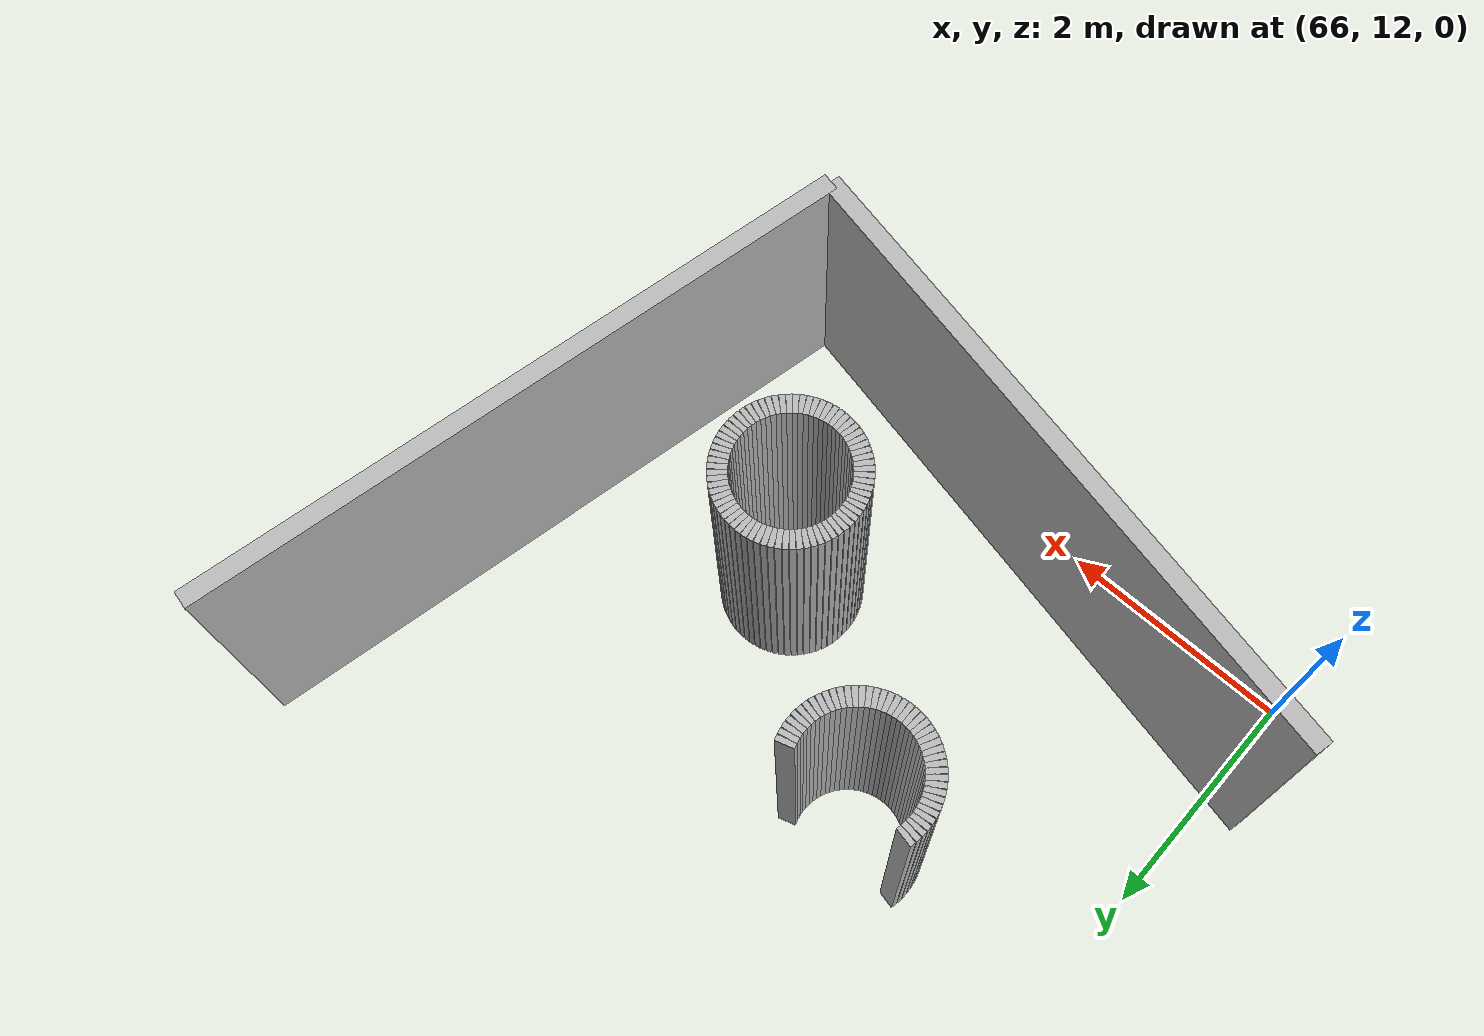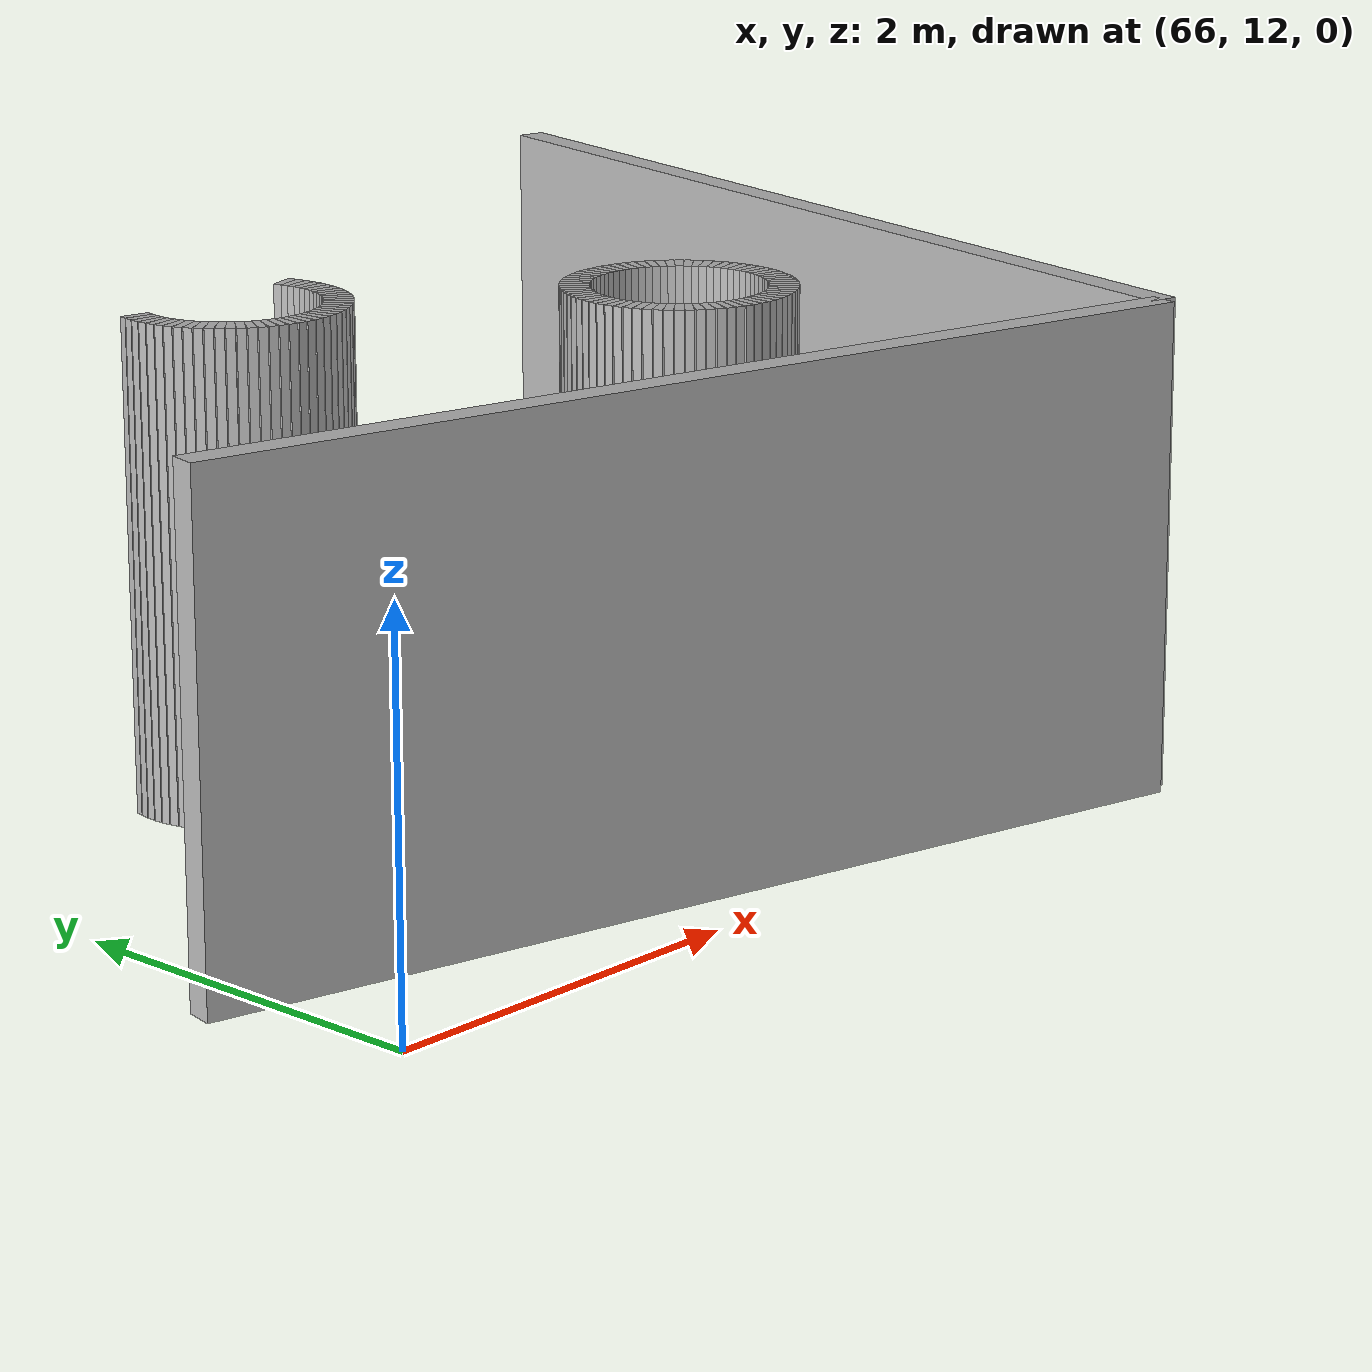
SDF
<sdf version="1.6">
 <model name="sps_1202">
  <static>1</static>
  <allow_auto_disable>0</allow_auto_disable>
  <link name="Wall1320">
   <collision name="collision"><geometry><box><size>0.0453524 0.15 2.5</size></box></geometry></collision>
   <visual name="visual">
    <geometry><box><size>0.0453524 0.15 2.5</size></box></geometry>
    <transparency>0.0</transparency>
   </visual>
   <pose>69.9755 14.1679 1.25 0 0 -0.655614</pose>
  </link>
  <link name="Wall1321">
   <collision name="collision"><geometry><box><size>0.0453186 0.15 2.5</size></box></geometry></collision>
   <visual name="visual">
    <geometry><box><size>0.0453186 0.15 2.5</size></box></geometry>
    <transparency>0.0</transparency>
   </visual>
   <pose>70.0102 14.1388 1.25 0 0 -0.740624</pose>
  </link>
  <link name="Wall1322">
   <collision name="collision"><geometry><box><size>0.0454087 0.15 2.5</size></box></geometry></collision>
   <visual name="visual">
    <geometry><box><size>0.0454087 0.15 2.5</size></box></geometry>
    <transparency>0.0</transparency>
   </visual>
   <pose>70.0422 14.1067 1.25 0 0 -0.831987</pose>
  </link>
  <link name="Wall1323">
   <collision name="collision"><geometry><box><size>0.0453637 0.15 2.5</size></box></geometry></collision>
   <visual name="visual">
    <geometry><box><size>0.0453637 0.15 2.5</size></box></geometry>
    <transparency>0.0</transparency>
   </visual>
   <pose>70.0713 14.0719 1.25 0 0 -0.91707</pose>
  </link>
  <link name="Wall1324">
   <collision name="collision"><geometry><box><size>0.045342 0.15 2.5</size></box></geometry></collision>
   <visual name="visual">
    <geometry><box><size>0.045342 0.15 2.5</size></box></geometry>
    <transparency>0.0</transparency>
   </visual>
   <pose>70.0973 14.0348 1.25 0 0 -1.00221</pose>
  </link>
  <link name="Wall1325">
   <collision name="collision"><geometry><box><size>0.0453724 0.15 2.5</size></box></geometry></collision>
   <visual name="visual">
    <geometry><box><size>0.0453724 0.15 2.5</size></box></geometry>
    <transparency>0.0</transparency>
   </visual>
   <pose>70.12 13.9956 1.25 0 0 -1.0897</pose>
  </link>
  <link name="Wall1326">
   <collision name="collision"><geometry><box><size>0.0453827 0.15 2.5</size></box></geometry></collision>
   <visual name="visual">
    <geometry><box><size>0.0453827 0.15 2.5</size></box></geometry>
    <transparency>0.0</transparency>
   </visual>
   <pose>70.1391 13.9545 1.25 0 0 -1.1818</pose>
  </link>
  <link name="Wall1327">
   <collision name="collision"><geometry><box><size>0.0453611 0.15 2.5</size></box></geometry></collision>
   <visual name="visual">
    <geometry><box><size>0.0453611 0.15 2.5</size></box></geometry>
    <transparency>0.0</transparency>
   </visual>
   <pose>70.1546 13.9119 1.25 0 0 -1.26181</pose>
  </link>
  <link name="Wall1328">
   <collision name="collision"><geometry><box><size>0.0453955 0.15 2.5</size></box></geometry></collision>
   <visual name="visual">
    <geometry><box><size>0.0453955 0.15 2.5</size></box></geometry>
    <transparency>0.0</transparency>
   </visual>
   <pose>70.1663 13.8681 1.25 0 0 -1.35811</pose>
  </link>
  <link name="Wall1329">
   <collision name="collision"><geometry><box><size>0.0453869 0.15 2.5</size></box></geometry></collision>
   <visual name="visual">
    <geometry><box><size>0.0453869 0.15 2.5</size></box></geometry>
    <transparency>0.0</transparency>
   </visual>
   <pose>70.1741 13.8234 1.25 0 0 -1.43727</pose>
  </link>
  <link name="Wall1330">
   <collision name="collision"><geometry><box><size>0.0452692 0.15 2.5</size></box></geometry></collision>
   <visual name="visual">
    <geometry><box><size>0.0452692 0.15 2.5</size></box></geometry>
    <transparency>0.0</transparency>
   </visual>
   <pose>70.1781 13.7783 1.25 0 0 -1.52764</pose>
  </link>
  <link name="Wall1331">
   <collision name="collision"><geometry><box><size>0.0454521 0.15 2.5</size></box></geometry></collision>
   <visual name="visual">
    <geometry><box><size>0.0454521 0.15 2.5</size></box></geometry>
    <transparency>0.0</transparency>
   </visual>
   <pose>70.1781 13.733 1.25 0 0 -1.61378</pose>
  </link>
  <link name="Wall1332">
   <collision name="collision"><geometry><box><size>0.0452055 0.15 2.5</size></box></geometry></collision>
   <visual name="visual">
    <geometry><box><size>0.0452055 0.15 2.5</size></box></geometry>
    <transparency>0.0</transparency>
   </visual>
   <pose>70.1741 13.6879 1.25 0 0 -1.70486</pose>
  </link>
  <link name="Wall1333">
   <collision name="collision"><geometry><box><size>0.0454345 0.15 2.5</size></box></geometry></collision>
   <visual name="visual">
    <geometry><box><size>0.0454345 0.15 2.5</size></box></geometry>
    <transparency>0.0</transparency>
   </visual>
   <pose>70.1662 13.6433 1.25 0 0 -1.78743</pose>
  </link>
  <link name="Wall1334">
   <collision name="collision"><geometry><box><size>0.0453057 0.15 2.5</size></box></geometry></collision>
   <visual name="visual">
    <geometry><box><size>0.0453057 0.15 2.5</size></box></geometry>
    <transparency>0.0</transparency>
   </visual>
   <pose>70.1545 13.5995 1.25 0 0 -1.87593</pose>
  </link>
  <link name="Wall1335">
   <collision name="collision"><geometry><box><size>0.0454525 0.15 2.5</size></box></geometry></collision>
   <visual name="visual">
    <geometry><box><size>0.0454525 0.15 2.5</size></box></geometry>
    <transparency>0.0</transparency>
   </visual>
   <pose>70.139 13.5569 1.25 0 0 -1.96352</pose>
  </link>
  <link name="Wall1336">
   <collision name="collision"><geometry><box><size>0.0453724 0.15 2.5</size></box></geometry></collision>
   <visual name="visual">
    <geometry><box><size>0.0453724 0.15 2.5</size></box></geometry>
    <transparency>0.0</transparency>
   </visual>
   <pose>70.1198 13.5158 1.25 0 0 -2.05189</pose>
  </link>
  <link name="Wall1337">
   <collision name="collision"><geometry><box><size>0.045342 0.15 2.5</size></box></geometry></collision>
   <visual name="visual">
    <geometry><box><size>0.045342 0.15 2.5</size></box></geometry>
    <transparency>0.0</transparency>
   </visual>
   <pose>70.0971 13.4766 1.25 0 0 -2.13938</pose>
  </link>
  <link name="Wall1338">
   <collision name="collision"><geometry><box><size>0.0453153 0.15 2.5</size></box></geometry></collision>
   <visual name="visual">
    <geometry><box><size>0.0453153 0.15 2.5</size></box></geometry>
    <transparency>0.0</transparency>
   </visual>
   <pose>70.0711 13.4395 1.25 0 0 -2.22534</pose>
  </link>
  <link name="Wall1339">
   <collision name="collision"><geometry><box><size>0.0453598 0.15 2.5</size></box></geometry></collision>
   <visual name="visual">
    <geometry><box><size>0.0453598 0.15 2.5</size></box></geometry>
    <transparency>0.0</transparency>
   </visual>
   <pose>70.042 13.4048 1.25 0 0 -2.31241</pose>
  </link>
  <link name="Wall1340">
   <collision name="collision"><geometry><box><size>0.0453974 0.15 2.5</size></box></geometry></collision>
   <visual name="visual">
    <geometry><box><size>0.0453974 0.15 2.5</size></box></geometry>
    <transparency>0.0</transparency>
   </visual>
   <pose>70.0099 13.3727 1.25 0 0 -2.39709</pose>
  </link>
  <link name="Wall1341">
   <collision name="collision"><geometry><box><size>0.0454008 0.15 2.5</size></box></geometry></collision>
   <visual name="visual">
    <geometry><box><size>0.0454008 0.15 2.5</size></box></geometry>
    <transparency>0.0</transparency>
   </visual>
   <pose>69.9752 13.3435 1.25 0 0 -2.4868</pose>
  </link>
  <link name="Wall1342">
   <collision name="collision"><geometry><box><size>0.0453659 0.15 2.5</size></box></geometry></collision>
   <visual name="visual">
    <geometry><box><size>0.0453659 0.15 2.5</size></box></geometry>
    <transparency>0.0</transparency>
   </visual>
   <pose>69.938 13.3176 1.25 0 0 -2.57971</pose>
  </link>
  <link name="Wall1343">
   <collision name="collision"><geometry><box><size>0.0453183 0.15 2.5</size></box></geometry></collision>
   <visual name="visual">
    <geometry><box><size>0.0453183 0.15 2.5</size></box></geometry>
    <transparency>0.0</transparency>
   </visual>
   <pose>69.8988 13.295 1.25 0 0 -2.65987</pose>
  </link>
  <link name="Wall1344">
   <collision name="collision"><geometry><box><size>0.0455089 0.15 2.5</size></box></geometry></collision>
   <visual name="visual">
    <geometry><box><size>0.0455089 0.15 2.5</size></box></geometry>
    <transparency>0.0</transparency>
   </visual>
   <pose>69.8577 13.2758 1.25 0 0 -2.74938</pose>
  </link>
  <link name="Wall1345">
   <collision name="collision"><geometry><box><size>0.0452475 0.15 2.5</size></box></geometry></collision>
   <visual name="visual">
    <geometry><box><size>0.0452475 0.15 2.5</size></box></geometry>
    <transparency>0.0</transparency>
   </visual>
   <pose>69.8151 13.2603 1.25 0 0 -2.83605</pose>
  </link>
  <link name="Wall1346">
   <collision name="collision"><geometry><box><size>0.0453285 0.15 2.5</size></box></geometry></collision>
   <visual name="visual">
    <geometry><box><size>0.0453285 0.15 2.5</size></box></geometry>
    <transparency>0.0</transparency>
   </visual>
   <pose>69.7714 13.2486 1.25 0 0 -2.92307</pose>
  </link>
  <link name="Wall1347">
   <collision name="collision"><geometry><box><size>0.0453551 0.15 2.5</size></box></geometry></collision>
   <visual name="visual">
    <geometry><box><size>0.0453551 0.15 2.5</size></box></geometry>
    <transparency>0.0</transparency>
   </visual>
   <pose>69.7267 13.2408 1.25 0 0 -3.0134</pose>
  </link>
  <link name="Wall1348">
   <collision name="collision"><geometry><box><size>0.0454521 0.15 2.5</size></box></geometry></collision>
   <visual name="visual">
    <geometry><box><size>0.0454521 0.15 2.5</size></box></geometry>
    <transparency>0.0</transparency>
   </visual>
   <pose>69.6815 13.2369 1.25 0 0 -3.09861</pose>
  </link>
  <link name="Wall1349">
   <collision name="collision"><geometry><box><size>0.0452082 0.15 2.5</size></box></geometry></collision>
   <visual name="visual">
    <geometry><box><size>0.0452082 0.15 2.5</size></box></geometry>
    <transparency>0.0</transparency>
   </visual>
   <pose>69.6363 13.2369 1.25 0 -0 3.09838</pose>
  </link>
  <link name="Wall1350">
   <collision name="collision"><geometry><box><size>0.0454156 0.15 2.5</size></box></geometry></collision>
   <visual name="visual">
    <geometry><box><size>0.0454156 0.15 2.5</size></box></geometry>
    <transparency>0.0</transparency>
   </visual>
   <pose>69.5911 13.2408 1.25 0 -0 3.01357</pose>
  </link>
  <link name="Wall1351">
   <collision name="collision"><geometry><box><size>0.0454476 0.15 2.5</size></box></geometry></collision>
   <visual name="visual">
    <geometry><box><size>0.0454476 0.15 2.5</size></box></geometry>
    <transparency>0.0</transparency>
   </visual>
   <pose>69.5464 13.2486 1.25 0 -0 2.92365</pose>
  </link>
  <link name="Wall1352">
   <collision name="collision"><geometry><box><size>0.0453611 0.15 2.5</size></box></geometry></collision>
   <visual name="visual">
    <geometry><box><size>0.0453611 0.15 2.5</size></box></geometry>
    <transparency>0.0</transparency>
   </visual>
   <pose>69.5026 13.2604 1.25 0 -0 2.83261</pose>
  </link>
  <link name="Wall1353">
   <collision name="collision"><geometry><box><size>0.0452834 0.15 2.5</size></box></geometry></collision>
   <visual name="visual">
    <geometry><box><size>0.0452834 0.15 2.5</size></box></geometry>
    <transparency>0.0</transparency>
   </visual>
   <pose>69.4601 13.276 1.25 0 -0 2.74732</pose>
  </link>
  <link name="Wall1354">
   <collision name="collision"><geometry><box><size>0.0454507 0.15 2.5</size></box></geometry></collision>
   <visual name="visual">
    <geometry><box><size>0.0454507 0.15 2.5</size></box></geometry>
    <transparency>0.0</transparency>
   </visual>
   <pose>69.419 13.2951 1.25 0 -0 2.66593</pose>
  </link>
  <link name="Wall1355">
   <collision name="collision"><geometry><box><size>0.0452906 0.15 2.5</size></box></geometry></collision>
   <visual name="visual">
    <geometry><box><size>0.0452906 0.15 2.5</size></box></geometry>
    <transparency>0.0</transparency>
   </visual>
   <pose>69.3798 13.3177 1.25 0 -0 2.57228</pose>
  </link>
  <link name="Wall1356">
   <collision name="collision"><geometry><box><size>0.0453637 0.15 2.5</size></box></geometry></collision>
   <visual name="visual">
    <geometry><box><size>0.0453637 0.15 2.5</size></box></geometry>
    <transparency>0.0</transparency>
   </visual>
   <pose>69.3427 13.3437 1.25 0 -0 2.48787</pose>
  </link>
  <link name="Wall1357">
   <collision name="collision"><geometry><box><size>0.0454388 0.15 2.5</size></box></geometry></collision>
   <visual name="visual">
    <geometry><box><size>0.0454388 0.15 2.5</size></box></geometry>
    <transparency>0.0</transparency>
   </visual>
   <pose>69.308 13.3729 1.25 0 -0 2.3961</pose>
  </link>
  <link name="Wall1358">
   <collision name="collision"><geometry><box><size>0.0453148 0.15 2.5</size></box></geometry></collision>
   <visual name="visual">
    <geometry><box><size>0.0453148 0.15 2.5</size></box></geometry>
    <transparency>0.0</transparency>
   </visual>
   <pose>69.276 13.405 1.25 0 -0 2.31332</pose>
  </link>
  <link name="Wall1359">
   <collision name="collision"><geometry><box><size>0.0453637 0.15 2.5</size></box></geometry></collision>
   <visual name="visual">
    <geometry><box><size>0.0453637 0.15 2.5</size></box></geometry>
    <transparency>0.0</transparency>
   </visual>
   <pose>69.2468 13.4397 1.25 0 -0 2.22452</pose>
  </link>
  <link name="Wall1360">
   <collision name="collision"><geometry><box><size>0.0452906 0.15 2.5</size></box></geometry></collision>
   <visual name="visual">
    <geometry><box><size>0.0452906 0.15 2.5</size></box></geometry>
    <transparency>0.0</transparency>
   </visual>
   <pose>69.2208 13.4768 1.25 0 -0 2.14011</pose>
  </link>
  <link name="Wall1361">
   <collision name="collision"><geometry><box><size>0.0455348 0.15 2.5</size></box></geometry></collision>
   <visual name="visual">
    <geometry><box><size>0.0455348 0.15 2.5</size></box></geometry>
    <transparency>0.0</transparency>
   </visual>
   <pose>69.1981 13.5161 1.25 0 -0 2.05003</pose>
  </link>
  <link name="Wall1362">
   <collision name="collision"><geometry><box><size>0.0452134 0.15 2.5</size></box></geometry></collision>
   <visual name="visual">
    <geometry><box><size>0.0452134 0.15 2.5</size></box></geometry>
    <transparency>0.0</transparency>
   </visual>
   <pose>69.179 13.5572 1.25 0 -0 1.96133</pose>
  </link>
  <link name="Wall1363">
   <collision name="collision"><geometry><box><size>0.0455355 0.15 2.5</size></box></geometry></collision>
   <visual name="visual">
    <geometry><box><size>0.0455355 0.15 2.5</size></box></geometry>
    <transparency>0.0</transparency>
   </visual>
   <pose>69.1635 13.5998 1.25 0 -0 1.87856</pose>
  </link>
  <link name="Wall1364">
   <collision name="collision"><geometry><box><size>0.0452557 0.15 2.5</size></box></geometry></collision>
   <visual name="visual">
    <geometry><box><size>0.0452557 0.15 2.5</size></box></geometry>
    <transparency>0.0</transparency>
   </visual>
   <pose>69.1518 13.6436 1.25 0 -0 1.78829</pose>
  </link>
  <link name="Wall1365">
   <collision name="collision"><geometry><box><size>0.0454156 0.15 2.5</size></box></geometry></collision>
   <visual name="visual">
    <geometry><box><size>0.0454156 0.15 2.5</size></box></geometry>
    <transparency>0.0</transparency>
   </visual>
   <pose>69.144 13.6882 1.25 0 -0 1.69882</pose>
  </link>
  <link name="Wall1366">
   <collision name="collision"><geometry><box><size>0.0452109 0.15 2.5</size></box></geometry></collision>
   <visual name="visual">
    <geometry><box><size>0.0452109 0.15 2.5</size></box></geometry>
    <transparency>0.0</transparency>
   </visual>
   <pose>69.1401 13.7333 1.25 0 -0 1.61536</pose>
  </link>
  <link name="Wall1367">
   <collision name="collision"><geometry><box><size>0.0454548 0.15 2.5</size></box></geometry></collision>
   <visual name="visual">
    <geometry><box><size>0.0454548 0.15 2.5</size></box></geometry>
    <transparency>0.0</transparency>
   </visual>
   <pose>69.1401 13.7786 1.25 0 -0 1.52647</pose>
  </link>
  <link name="Wall1368">
   <collision name="collision"><geometry><box><size>0.0453788 0.15 2.5</size></box></geometry></collision>
   <visual name="visual">
    <geometry><box><size>0.0453788 0.15 2.5</size></box></geometry>
    <transparency>0.0</transparency>
   </visual>
   <pose>69.1441 13.8238 1.25 0 -0 1.4386</pose>
  </link>
  <link name="Wall1369">
   <collision name="collision"><geometry><box><size>0.0453285 0.15 2.5</size></box></geometry></collision>
   <visual name="visual">
    <geometry><box><size>0.0453285 0.15 2.5</size></box></geometry>
    <transparency>0.0</transparency>
   </visual>
   <pose>69.152 13.8684 1.25 0 -0 1.35227</pose>
  </link>
  <link name="Wall1370">
   <collision name="collision"><geometry><box><size>0.0454622 0.15 2.5</size></box></geometry></collision>
   <visual name="visual">
    <geometry><box><size>0.0454622 0.15 2.5</size></box></geometry>
    <transparency>0.0</transparency>
   </visual>
   <pose>69.1637 13.9122 1.25 0 -0 1.26815</pose>
  </link>
  <link name="Wall1371">
   <collision name="collision"><geometry><box><size>0.0452834 0.15 2.5</size></box></geometry></collision>
   <visual name="visual">
    <geometry><box><size>0.0452834 0.15 2.5</size></box></geometry>
    <transparency>0.0</transparency>
   </visual>
   <pose>69.1791 13.9548 1.25 0 -0 1.17652</pose>
  </link>
  <link name="Wall1372">
   <collision name="collision"><geometry><box><size>0.0452338 0.15 2.5</size></box></geometry></collision>
   <visual name="visual">
    <geometry><box><size>0.0452338 0.15 2.5</size></box></geometry>
    <transparency>0.0</transparency>
   </visual>
   <pose>69.1982 13.9958 1.25 0 -0 1.09267</pose>
  </link>
  <link name="Wall1373">
   <collision name="collision"><geometry><box><size>0.0455949 0.15 2.5</size></box></geometry></collision>
   <visual name="visual">
    <geometry><box><size>0.0455949 0.15 2.5</size></box></geometry>
    <transparency>0.0</transparency>
   </visual>
   <pose>69.2209 14.0351 1.25 0 -0 1.00099</pose>
  </link>
  <link name="Wall1374">
   <collision name="collision"><geometry><box><size>0.0453637 0.15 2.5</size></box></geometry></collision>
   <visual name="visual">
    <geometry><box><size>0.0453637 0.15 2.5</size></box></geometry>
    <transparency>0.0</transparency>
   </visual>
   <pose>69.247 14.0723 1.25 0 -0 0.91707</pose>
  </link>
  <link name="Wall1375">
   <collision name="collision"><geometry><box><size>0.0453148 0.15 2.5</size></box></geometry></collision>
   <visual name="visual">
    <geometry><box><size>0.0453148 0.15 2.5</size></box></geometry>
    <transparency>0.0</transparency>
   </visual>
   <pose>69.2761 14.107 1.25 0 -0 0.82827</pose>
  </link>
  <link name="Wall1376">
   <collision name="collision"><geometry><box><size>0.0453148 0.15 2.5</size></box></geometry></collision>
   <visual name="visual">
    <geometry><box><size>0.0453148 0.15 2.5</size></box></geometry>
    <transparency>0.0</transparency>
   </visual>
   <pose>69.3082 14.139 1.25 0 -0 0.742526</pose>
  </link>
  <link name="Wall1377">
   <collision name="collision"><geometry><box><size>0.0453637 0.15 2.5</size></box></geometry></collision>
   <visual name="visual">
    <geometry><box><size>0.0453637 0.15 2.5</size></box></geometry>
    <transparency>0.0</transparency>
   </visual>
   <pose>69.3429 14.1681 1.25 0 -0 0.653727</pose>
  </link>
  <link name="Wall1378">
   <collision name="collision"><geometry><box><size>0.0454964 0.15 2.5</size></box></geometry></collision>
   <visual name="visual">
    <geometry><box><size>0.0454964 0.15 2.5</size></box></geometry>
    <transparency>0.0</transparency>
   </visual>
   <pose>69.3801 14.1941 1.25 0 -0 0.566421</pose>
  </link>
  <link name="Wall1379">
   <collision name="collision"><geometry><box><size>0.04526 0.15 2.5</size></box></geometry></collision>
   <visual name="visual">
    <geometry><box><size>0.04526 0.15 2.5</size></box></geometry>
    <transparency>0.0</transparency>
   </visual>
   <pose>69.4194 14.2167 1.25 0 -0 0.476313</pose>
  </link>
  <link name="Wall1380">
   <collision name="collision"><geometry><box><size>0.0453069 0.15 2.5</size></box></geometry></collision>
   <visual name="visual">
    <geometry><box><size>0.0453069 0.15 2.5</size></box></geometry>
    <transparency>0.0</transparency>
   </visual>
   <pose>69.4604 14.2358 1.25 0 -0 0.395517</pose>
  </link>
  <link name="Wall1381">
   <collision name="collision"><geometry><box><size>0.0454622 0.15 2.5</size></box></geometry></collision>
   <visual name="visual">
    <geometry><box><size>0.0454622 0.15 2.5</size></box></geometry>
    <transparency>0.0</transparency>
   </visual>
   <pose>69.503 14.2513 1.25 0 -0 0.302645</pose>
  </link>
  <link name="Wall1382">
   <collision name="collision"><geometry><box><size>0.0452689 0.15 2.5</size></box></geometry></collision>
   <visual name="visual">
    <geometry><box><size>0.0452689 0.15 2.5</size></box></geometry>
    <transparency>0.0</transparency>
   </visual>
   <pose>69.5468 14.263 1.25 0 -0 0.218815</pose>
  </link>
  <link name="Wall1383">
   <collision name="collision"><geometry><box><size>0.0453788 0.15 2.5</size></box></geometry></collision>
   <visual name="visual">
    <geometry><box><size>0.0453788 0.15 2.5</size></box></geometry>
    <transparency>0.0</transparency>
   </visual>
   <pose>69.5914 14.2709 1.25 0 -0 0.132196</pose>
  </link>
  <link name="Wall1384">
   <collision name="collision"><geometry><box><size>0.0454548 0.15 2.5</size></box></geometry></collision>
   <visual name="visual">
    <geometry><box><size>0.0454548 0.15 2.5</size></box></geometry>
    <transparency>0.0</transparency>
   </visual>
   <pose>69.6366 14.2749 1.25 0 -0 0.0443258</pose>
  </link>
  <link name="Wall1385">
   <collision name="collision"><geometry><box><size>0.0452109 0.15 2.5</size></box></geometry></collision>
   <visual name="visual">
    <geometry><box><size>0.0452109 0.15 2.5</size></box></geometry>
    <transparency>0.0</transparency>
   </visual>
   <pose>69.6818 14.2749 1.25 0 0 -0.0445651</pose>
  </link>
  <link name="Wall1386">
   <collision name="collision"><geometry><box><size>0.0454394 0.15 2.5</size></box></geometry></collision>
   <visual name="visual">
    <geometry><box><size>0.0454394 0.15 2.5</size></box></geometry>
    <transparency>0.0</transparency>
   </visual>
   <pose>69.727 14.2709 1.25 0 0 -0.132019</pose>
  </link>
  <link name="Wall1387">
   <collision name="collision"><geometry><box><size>0.0454476 0.15 2.5</size></box></geometry></collision>
   <visual name="visual">
    <geometry><box><size>0.0454476 0.15 2.5</size></box></geometry>
    <transparency>0.0</transparency>
   </visual>
   <pose>69.7717 14.263 1.25 0 0 -0.217941</pose>
  </link>
  <link name="Wall1388">
   <collision name="collision"><geometry><box><size>0.0452874 0.15 2.5</size></box></geometry></collision>
   <visual name="visual">
    <geometry><box><size>0.0452874 0.15 2.5</size></box></geometry>
    <transparency>0.0</transparency>
   </visual>
   <pose>69.8155 14.2513 1.25 0 0 -0.30385</pose>
  </link>
  <link name="Wall1389">
   <collision name="collision"><geometry><box><size>0.0453069 0.15 2.5</size></box></geometry></collision>
   <visual name="visual">
    <geometry><box><size>0.0453069 0.15 2.5</size></box></geometry>
    <transparency>0.0</transparency>
   </visual>
   <pose>69.858 14.2358 1.25 0 0 -0.395517</pose>
  </link>
  <link name="Wall1390">
   <collision name="collision"><geometry><box><size>0.0455348 0.15 2.5</size></box></geometry></collision>
   <visual name="visual">
    <geometry><box><size>0.0455348 0.15 2.5</size></box></geometry>
    <transparency>0.0</transparency>
   </visual>
   <pose>69.8991 14.2166 1.25 0 0 -0.479234</pose>
  </link>
  <link name="Wall1391">
   <collision name="collision"><geometry><box><size>0.0453092 0.15 2.5</size></box></geometry></collision>
   <visual name="visual">
    <geometry><box><size>0.0453092 0.15 2.5</size></box></geometry>
    <transparency>0.0</transparency>
   </visual>
   <pose>69.9384 14.1939 1.25 0 0 -0.567452</pose>
  </link>
  <link name="Wall2151">
   <collision name="collision"><geometry><box><size>0.0454804 0.15 2.5</size></box></geometry></collision>
   <visual name="visual">
    <geometry><box><size>0.0454804 0.15 2.5</size></box></geometry>
    <transparency>0.0</transparency>
   </visual>
   <pose>68.3979 15.246 1.25 0 0 -1.26687</pose>
  </link>
  <link name="Wall2152">
   <collision name="collision"><geometry><box><size>0.0453153 0.15 2.5</size></box></geometry></collision>
   <visual name="visual">
    <geometry><box><size>0.0453153 0.15 2.5</size></box></geometry>
    <transparency>0.0</transparency>
   </visual>
   <pose>68.4096 15.2022 1.25 0 0 -1.35359</pose>
  </link>
  <link name="Wall2153">
   <collision name="collision"><geometry><box><size>0.0453788 0.15 2.5</size></box></geometry></collision>
   <visual name="visual">
    <geometry><box><size>0.0453788 0.15 2.5</size></box></geometry>
    <transparency>0.0</transparency>
   </visual>
   <pose>68.4174 15.1576 1.25 0 0 -1.4386</pose>
  </link>
  <link name="Wall2154">
   <collision name="collision"><geometry><box><size>0.0454548 0.15 2.5</size></box></geometry></collision>
   <visual name="visual">
    <geometry><box><size>0.0454548 0.15 2.5</size></box></geometry>
    <transparency>0.0</transparency>
   </visual>
   <pose>68.4214 15.1124 1.25 0 0 -1.52647</pose>
  </link>
  <link name="Wall2155">
   <collision name="collision"><geometry><box><size>0.0452109 0.15 2.5</size></box></geometry></collision>
   <visual name="visual">
    <geometry><box><size>0.0452109 0.15 2.5</size></box></geometry>
    <transparency>0.0</transparency>
   </visual>
   <pose>68.4214 15.0671 1.25 0 0 -1.61536</pose>
  </link>
  <link name="Wall2156">
   <collision name="collision"><geometry><box><size>0.0454394 0.15 2.5</size></box></geometry></collision>
   <visual name="visual">
    <geometry><box><size>0.0454394 0.15 2.5</size></box></geometry>
    <transparency>0.0</transparency>
   </visual>
   <pose>68.4174 15.022 1.25 0 0 -1.70282</pose>
  </link>
  <link name="Wall2157">
   <collision name="collision"><geometry><box><size>0.0452557 0.15 2.5</size></box></geometry></collision>
   <visual name="visual">
    <geometry><box><size>0.0452557 0.15 2.5</size></box></geometry>
    <transparency>0.0</transparency>
   </visual>
   <pose>68.4096 14.9774 1.25 0 0 -1.78829</pose>
  </link>
  <link name="Wall2158">
   <collision name="collision"><geometry><box><size>0.0455541 0.15 2.5</size></box></geometry></collision>
   <visual name="visual">
    <geometry><box><size>0.0455541 0.15 2.5</size></box></geometry>
    <transparency>0.0</transparency>
   </visual>
   <pose>68.3978 14.9336 1.25 0 0 -1.87984</pose>
  </link>
  <link name="Wall2159">
   <collision name="collision"><geometry><box><size>0.0452834 0.15 2.5</size></box></geometry></collision>
   <visual name="visual">
    <geometry><box><size>0.0452834 0.15 2.5</size></box></geometry>
    <transparency>0.0</transparency>
   </visual>
   <pose>68.3821 14.891 1.25 0 0 -1.96507</pose>
  </link>
  <link name="Wall2160">
   <collision name="collision"><geometry><box><size>0.0454228 0.15 2.5</size></box></geometry></collision>
   <visual name="visual">
    <geometry><box><size>0.0454228 0.15 2.5</size></box></geometry>
    <transparency>0.0</transparency>
   </visual>
   <pose>68.3631 14.8499 1.25 0 0 -2.04526</pose>
  </link>
  <link name="Wall2161">
   <collision name="collision"><geometry><box><size>0.0452906 0.15 2.5</size></box></geometry></collision>
   <visual name="visual">
    <geometry><box><size>0.0452906 0.15 2.5</size></box></geometry>
    <transparency>0.0</transparency>
   </visual>
   <pose>68.3405 14.8106 1.25 0 0 -2.14011</pose>
  </link>
  <link name="Wall2162">
   <collision name="collision"><geometry><box><size>0.0453637 0.15 2.5</size></box></geometry></collision>
   <visual name="visual">
    <geometry><box><size>0.0453637 0.15 2.5</size></box></geometry>
    <transparency>0.0</transparency>
   </visual>
   <pose>68.3145 14.7735 1.25 0 0 -2.22452</pose>
  </link>
  <link name="Wall2163">
   <collision name="collision"><geometry><box><size>0.0454388 0.15 2.5</size></box></geometry></collision>
   <visual name="visual">
    <geometry><box><size>0.0454388 0.15 2.5</size></box></geometry>
    <transparency>0.0</transparency>
   </visual>
   <pose>68.2853 14.7388 1.25 0 0 -2.31629</pose>
  </link>
  <link name="Wall2164">
   <collision name="collision"><geometry><box><size>0.0453148 0.15 2.5</size></box></geometry></collision>
   <visual name="visual">
    <geometry><box><size>0.0453148 0.15 2.5</size></box></geometry>
    <transparency>0.0</transparency>
   </visual>
   <pose>68.2532 14.7068 1.25 0 0 -2.39907</pose>
  </link>
  <link name="Wall2165">
   <collision name="collision"><geometry><box><size>0.0453637 0.15 2.5</size></box></geometry></collision>
   <visual name="visual">
    <geometry><box><size>0.0453637 0.15 2.5</size></box></geometry>
    <transparency>0.0</transparency>
   </visual>
   <pose>68.2185 14.6777 1.25 0 0 -2.48787</pose>
  </link>
  <link name="Wall2166">
   <collision name="collision"><geometry><box><size>0.045342 0.15 2.5</size></box></geometry></collision>
   <visual name="visual">
    <geometry><box><size>0.045342 0.15 2.5</size></box></geometry>
    <transparency>0.0</transparency>
   </visual>
   <pose>68.1814 14.6517 1.25 0 0 -2.57301</pose>
  </link>
  <link name="Wall2167">
   <collision name="collision"><geometry><box><size>0.045288 0.15 2.5</size></box></geometry></collision>
   <visual name="visual">
    <geometry><box><size>0.045288 0.15 2.5</size></box></geometry>
    <transparency>0.0</transparency>
   </visual>
   <pose>68.1421 14.6291 1.25 0 0 -2.66408</pose>
  </link>
  <link name="Wall2168">
   <collision name="collision"><geometry><box><size>0.0454525 0.15 2.5</size></box></geometry></collision>
   <visual name="visual">
    <geometry><box><size>0.0454525 0.15 2.5</size></box></geometry>
    <transparency>0.0</transparency>
   </visual>
   <pose>68.101 14.61 1.25 0 0 -2.74887</pose>
  </link>
  <link name="Wall2169">
   <collision name="collision"><geometry><box><size>0.0455355 0.15 2.5</size></box></geometry></collision>
   <visual name="visual">
    <geometry><box><size>0.0455355 0.15 2.5</size></box></geometry>
    <transparency>0.0</transparency>
   </visual>
   <pose>68.0583 14.5944 1.25 0 0 -2.83383</pose>
  </link>
  <link name="Wall2170">
   <collision name="collision"><geometry><box><size>0.0452557 0.15 2.5</size></box></geometry></collision>
   <visual name="visual">
    <geometry><box><size>0.0452557 0.15 2.5</size></box></geometry>
    <transparency>0.0</transparency>
   </visual>
   <pose>68.0145 14.5826 1.25 0 0 -2.92409</pose>
  </link>
  <link name="Wall2171">
   <collision name="collision"><geometry><box><size>0.0453551 0.15 2.5</size></box></geometry></collision>
   <visual name="visual">
    <geometry><box><size>0.0453551 0.15 2.5</size></box></geometry>
    <transparency>0.0</transparency>
   </visual>
   <pose>67.97 14.5748 1.25 0 0 -3.0134</pose>
  </link>
  <link name="Wall2172">
   <collision name="collision"><geometry><box><size>0.0452719 0.15 2.5</size></box></geometry></collision>
   <visual name="visual">
    <geometry><box><size>0.0452719 0.15 2.5</size></box></geometry>
    <transparency>0.0</transparency>
   </visual>
   <pose>67.9249 14.5709 1.25 0 0 -3.09709</pose>
  </link>
  <link name="Wall2173">
   <collision name="collision"><geometry><box><size>0.0454548 0.15 2.5</size></box></geometry></collision>
   <visual name="visual">
    <geometry><box><size>0.0454548 0.15 2.5</size></box></geometry>
    <transparency>0.0</transparency>
   </visual>
   <pose>67.8795 14.5709 1.25 0 -0 3.09727</pose>
  </link>
  <link name="Wall2174">
   <collision name="collision"><geometry><box><size>0.0453788 0.15 2.5</size></box></geometry></collision>
   <visual name="visual">
    <geometry><box><size>0.0453788 0.15 2.5</size></box></geometry>
    <transparency>0.0</transparency>
   </visual>
   <pose>67.8343 14.5749 1.25 0 -0 3.0094</pose>
  </link>
  <link name="Wall2175">
   <collision name="collision"><geometry><box><size>0.0452689 0.15 2.5</size></box></geometry></collision>
   <visual name="visual">
    <geometry><box><size>0.0452689 0.15 2.5</size></box></geometry>
    <transparency>0.0</transparency>
   </visual>
   <pose>67.7898 14.5828 1.25 0 -0 2.92278</pose>
  </link>
  <link name="Wall2176">
   <collision name="collision"><geometry><box><size>0.0452874 0.15 2.5</size></box></geometry></collision>
   <visual name="visual">
    <geometry><box><size>0.0452874 0.15 2.5</size></box></geometry>
    <transparency>0.0</transparency>
   </visual>
   <pose>67.7461 14.5945 1.25 0 -0 2.83774</pose>
  </link>
  <link name="Wall2177">
   <collision name="collision"><geometry><box><size>0.0454525 0.15 2.5</size></box></geometry></collision>
   <visual name="visual">
    <geometry><box><size>0.0454525 0.15 2.5</size></box></geometry>
    <transparency>0.0</transparency>
   </visual>
   <pose>67.7035 14.61 1.25 0 -0 2.74887</pose>
  </link>
  <link name="Wall2178">
   <collision name="collision"><geometry><box><size>0.0453724 0.15 2.5</size></box></geometry></collision>
   <visual name="visual">
    <geometry><box><size>0.0453724 0.15 2.5</size></box></geometry>
    <transparency>0.0</transparency>
   </visual>
   <pose>67.6623 14.6292 1.25 0 -0 2.6605</pose>
  </link>
  <link name="Wall2179">
   <collision name="collision"><geometry><box><size>0.0454964 0.15 2.5</size></box></geometry></collision>
   <visual name="visual">
    <geometry><box><size>0.0454964 0.15 2.5</size></box></geometry>
    <transparency>0.0</transparency>
   </visual>
   <pose>67.623 14.6519 1.25 0 -0 2.57517</pose>
  </link>
  <link name="Wall2180">
   <collision name="collision"><geometry><box><size>0.0453637 0.15 2.5</size></box></geometry></collision>
   <visual name="visual">
    <geometry><box><size>0.0453637 0.15 2.5</size></box></geometry>
    <transparency>0.0</transparency>
   </visual>
   <pose>67.5858 14.6779 1.25 0 -0 2.48787</pose>
  </link>
  <link name="Wall2181">
   <collision name="collision"><geometry><box><size>0.04518 0.15 2.5</size></box></geometry></collision>
   <visual name="visual">
    <geometry><box><size>0.04518 0.15 2.5</size></box></geometry>
    <transparency>0.0</transparency>
   </visual>
   <pose>67.5512 14.707 1.25 0 -0 2.39633</pose>
  </link>
  <link name="Wall2182">
   <collision name="collision"><geometry><box><size>0.0455322 0.15 2.5</size></box></geometry></collision>
   <visual name="visual">
    <geometry><box><size>0.0455322 0.15 2.5</size></box></geometry>
    <transparency>0.0</transparency>
   </visual>
   <pose>67.5192 14.7391 1.25 0 -0 2.31258</pose>
  </link>
  <link name="Wall2183">
   <collision name="collision"><geometry><box><size>0.0452185 0.15 2.5</size></box></geometry></collision>
   <visual name="visual">
    <geometry><box><size>0.0452185 0.15 2.5</size></box></geometry>
    <transparency>0.0</transparency>
   </visual>
   <pose>67.4901 14.7738 1.25 0 -0 2.22699</pose>
  </link>
  <link name="Wall2184">
   <collision name="collision"><geometry><box><size>0.0454964 0.15 2.5</size></box></geometry></collision>
   <visual name="visual">
    <geometry><box><size>0.0454964 0.15 2.5</size></box></geometry>
    <transparency>0.0</transparency>
   </visual>
   <pose>67.4641 14.8109 1.25 0 -0 2.13722</pose>
  </link>
  <link name="Wall2185">
   <collision name="collision"><geometry><box><size>0.045288 0.15 2.5</size></box></geometry></collision>
   <visual name="visual">
    <geometry><box><size>0.045288 0.15 2.5</size></box></geometry>
    <transparency>0.0</transparency>
   </visual>
   <pose>67.4415 14.8502 1.25 0 -0 2.04831</pose>
  </link>
  <link name="Wall2186">
   <collision name="collision"><geometry><box><size>0.0454525 0.15 2.5</size></box></geometry></collision>
   <visual name="visual">
    <geometry><box><size>0.0454525 0.15 2.5</size></box></geometry>
    <transparency>0.0</transparency>
   </visual>
   <pose>67.4224 14.8913 1.25 0 -0 1.96352</pose>
  </link>
  <link name="Wall2187">
   <collision name="collision"><geometry><box><size>0.0453057 0.15 2.5</size></box></geometry></collision>
   <visual name="visual">
    <geometry><box><size>0.0453057 0.15 2.5</size></box></geometry>
    <transparency>0.0</transparency>
   </visual>
   <pose>67.4069 14.9339 1.25 0 -0 1.87593</pose>
  </link>
  <link name="Wall2188">
   <collision name="collision"><geometry><box><size>0.0452557 0.15 2.5</size></box></geometry></collision>
   <visual name="visual">
    <geometry><box><size>0.0452557 0.15 2.5</size></box></geometry>
    <transparency>0.0</transparency>
   </visual>
   <pose>67.3952 14.9776 1.25 0 -0 1.78829</pose>
  </link>
  <link name="Wall2189">
   <collision name="collision"><geometry><box><size>0.0453869 0.15 2.5</size></box></geometry></collision>
   <visual name="visual">
    <geometry><box><size>0.0453869 0.15 2.5</size></box></geometry>
    <transparency>0.0</transparency>
   </visual>
   <pose>67.3873 15.0222 1.25 0 -0 1.70433</pose>
  </link>
  <link name="Wall2190">
   <collision name="collision"><geometry><box><size>0.0454521 0.15 2.5</size></box></geometry></collision>
   <visual name="visual">
    <geometry><box><size>0.0454521 0.15 2.5</size></box></geometry>
    <transparency>0.0</transparency>
   </visual>
   <pose>67.3833 15.0674 1.25 0 -0 1.61378</pose>
  </link>
  <link name="Wall2191">
   <collision name="collision"><geometry><box><size>0.0452082 0.15 2.5</size></box></geometry></collision>
   <visual name="visual">
    <geometry><box><size>0.0452082 0.15 2.5</size></box></geometry>
    <transparency>0.0</transparency>
   </visual>
   <pose>67.3833 15.1127 1.25 0 -0 1.52758</pose>
  </link>
  <link name="Wall2192">
   <collision name="collision"><geometry><box><size>0.0454474 0.15 2.5</size></box></geometry></collision>
   <visual name="visual">
    <geometry><box><size>0.0454474 0.15 2.5</size></box></geometry>
    <transparency>0.0</transparency>
   </visual>
   <pose>67.3873 15.1578 1.25 0 -0 1.43745</pose>
  </link>
  <link name="Wall2193">
   <collision name="collision"><geometry><box><size>0.0454345 0.15 2.5</size></box></geometry></collision>
   <visual name="visual">
    <geometry><box><size>0.0454345 0.15 2.5</size></box></geometry>
    <transparency>0.0</transparency>
   </visual>
   <pose>67.3952 15.2025 1.25 0 -0 1.35417</pose>
  </link>
  <link name="Wall2460">
   <collision name="collision"><geometry><box><size>5.58021 0.15 2.5</size></box></geometry></collision>
   <visual name="visual">
    <geometry><box><size>5.58021 0.15 2.5</size></box></geometry>
    <transparency>0.0</transparency>
   </visual>
   <pose>71.5797 14.5046 1.25 0 0 -1.78504</pose>
  </link>
  <link name="Wall2461">
   <collision name="collision"><geometry><box><size>5.43535 0.15 2.5</size></box></geometry></collision>
   <visual name="visual">
    <geometry><box><size>5.43535 0.15 2.5</size></box></geometry>
    <transparency>0.0</transparency>
   </visual>
   <pose>68.331 12.3562 1.25 0 -0 2.92731</pose>
  </link>
 </model>
</sdf>
